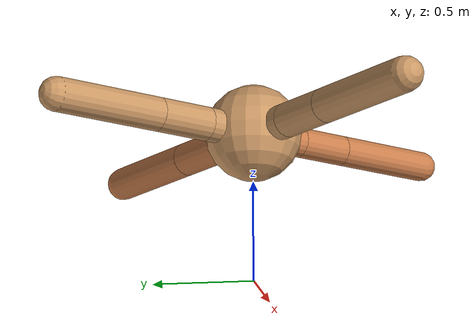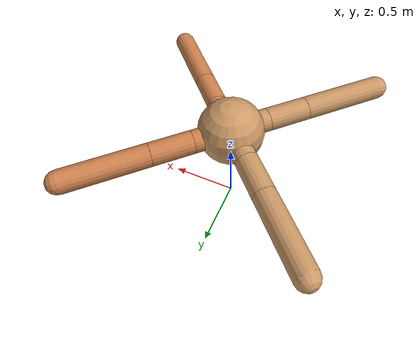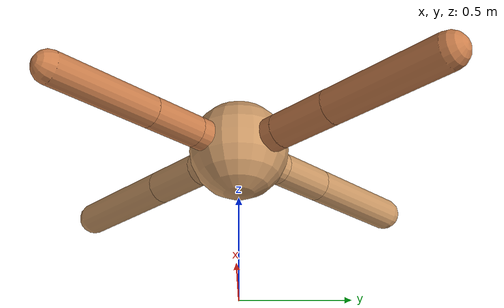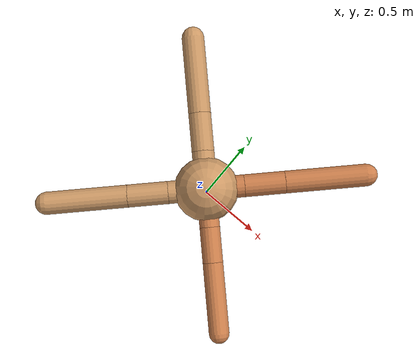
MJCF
<?xml version="1.0" ?>
<mujoco model="ant">

	<compiler angle="degree" coordinate="local" inertiafromgeom="true"/>

	<option integrator="RK4" timestep="0.01"/>

	<custom>

		<numeric data="0.0 0.0 0.55 1.0 0.0 0.0 0.0 0.0 1.0 0.0 -1.0 0.0 -1.0 0.0 1.0" name="init_qpos"/>

	</custom>

	<default>

		<joint armature="1" damping="1" limited="true"/>

		<geom conaffinity="0" condim="3" density="5.0" friction="1.5 0.1 0.1" margin="0.01" rgba="0.8 0.6 0.4 1"/>

	</default>

	<worldbody>

		<body name="torso" pos="0 0 0.75">

			<geom name="torso_geom" pos="0 0 0" size="0.24048008707046847" type="sphere"/>

			<!--joint armature="0" damping="0" limited="false" margin="0.01" name="root" pos="0 0 0" type="free"/-->

			<body name="front_left_leg" pos="0 0 0">

				<geom fromto="0 0 0 0.2 0.2 0" name="aux_1_geom" size="0.08432916502900133" type="capsule" rgba=".8 .5 .3 1"/>

				<body name="aux_1" pos="0.2 0.2 0">

					<joint axis="0 0 1" name="hip_1" pos="0.0 0.0 0.0" range="-40 40" type="hinge"/>

					<geom fromto="0 0 0 0.2143768393340238 0.2143768393340238 0" name="left_leg_geom" size="0.08432916502900133" type="capsule" rgba=".8 .5 .3 1"/>

					<body pos="0.2143768393340238 0.2143768393340238 0" name="front_left_foot">

						<joint axis="-1 1 0" name="ankle_1" pos="0.0 0.0 0.0" range="30 100" type="hinge"/>

						<geom fromto="0 0 0 0.4287536786680476 0.4287536786680476 0" name="left_ankle_geom" size="0.08432916502900133" type="capsule" rgba=".8 .5 .3 1"/>

					</body>

				</body>

			</body>

			<body name="front_right_leg" pos="0 0 0">

				<geom fromto="0 0 0 -0.2 0.2 0" name="aux_2_geom" size="0.08442335258246168" type="capsule"/>

				<body name="aux_2" pos="-0.2 0.2 0">

					<joint axis="0 0 1" name="hip_2" pos="0.0 0.0 0.0" range="-40 40" type="hinge"/>

					<geom fromto="0 0 0 -0.2014358562672833 0.2014358562672833 0" name="right_leg_geom" size="0.08442335258246168" type="capsule"/>

					<body pos="-0.2014358562672833 0.2014358562672833 0" name="front_right_foot">

						<joint axis="1 1 0" name="ankle_2" pos="0.0 0.0 0.0" range="-100 -30" type="hinge"/>

						<geom fromto="0 0 0 -0.4028717125345666 0.4028717125345666 0" name="right_ankle_geom" size="0.08442335258246168" type="capsule"/>

					</body>

				</body>

			</body>

			<body name="left_back_leg" pos="0 0 0">

				<geom fromto="0 0 0 -0.2 -0.2 0" name="aux_3_geom" size="0.0852761419961744" type="capsule"/>

				<body name="aux_3" pos="-0.2 -0.2 0">

					<joint axis="0 0 1" name="hip_3" pos="0.0 0.0 0.0" range="-40 40" type="hinge"/>

					<geom fromto="0 0 0 -0.21372771304694949 -0.21372771304694949 0" name="back_leg_geom" size="0.0852761419961744" type="capsule"/>

					<body pos="-0.21372771304694949 -0.21372771304694949 0" name="left_back_foot">

						<joint axis="-1 1 0" name="ankle_3" pos="0.0 0.0 0.0" range="-100 -30" type="hinge"/>

						<geom fromto="0 0 0 -0.42745542609389897 -0.42745542609389897 0" name="third_ankle_geom" size="0.0852761419961744" type="capsule"/>

					</body>

				</body>

			</body>

			<body name="right_back_leg" pos="0 0 0">

				<geom fromto="0 0 0 0.2 -0.2 0" name="aux_4_geom" size="0.07581909608908664" type="capsule" rgba=".8 .5 .3 1"/>

				<body name="aux_4" pos="0.2 -0.2 0">

					<joint axis="0 0 1" name="hip_4" pos="0.0 0.0 0.0" range="-40 40" type="hinge"/>

					<geom fromto="0 0 0 0.18497284866916164 -0.18497284866916164 0" name="rightback_leg_geom" size="0.07581909608908664" type="capsule" rgba=".8 .5 .3 1"/>

					<body pos="0.18497284866916164 -0.18497284866916164 0" name="right_back_foot">

						<joint axis="1 1 0" name="ankle_4" pos="0.0 0.0 0.0" range="30 100" type="hinge"/>

						<geom fromto="0 0 0 0.3699456973383233 -0.3699456973383233 0" name="fourth_ankle_geom" size="0.07581909608908664" type="capsule" rgba=".8 .5 .3 1"/>

					</body>

				</body>

			</body>

		</body>

	</worldbody>

	<actuator>

		<motor ctrllimited="true" ctrlrange="-1.0 1.0" joint="hip_4" gear="150"/>

		<motor ctrllimited="true" ctrlrange="-1.0 1.0" joint="ankle_4" gear="150"/>

		<motor ctrllimited="true" ctrlrange="-1.0 1.0" joint="hip_1" gear="150"/>

		<motor ctrllimited="true" ctrlrange="-1.0 1.0" joint="ankle_1" gear="150"/>

		<motor ctrllimited="true" ctrlrange="-1.0 1.0" joint="hip_2" gear="150"/>

		<motor ctrllimited="true" ctrlrange="-1.0 1.0" joint="ankle_2" gear="150"/>

		<motor ctrllimited="true" ctrlrange="-1.0 1.0" joint="hip_3" gear="150"/>

		<motor ctrllimited="true" ctrlrange="-1.0 1.0" joint="ankle_3" gear="150"/>

	</actuator>

</mujoco>
